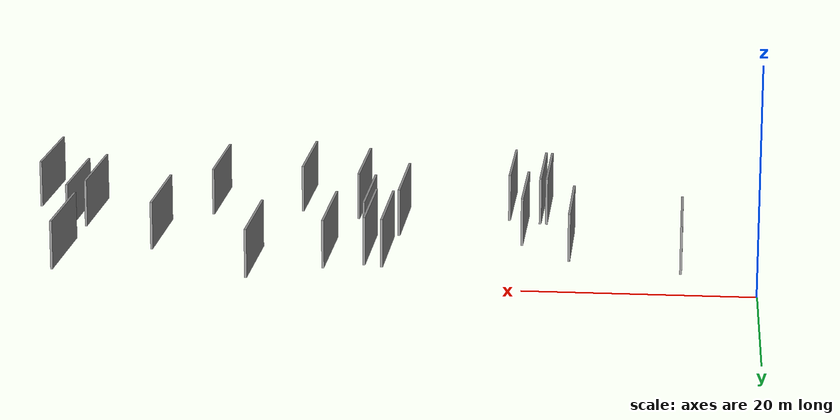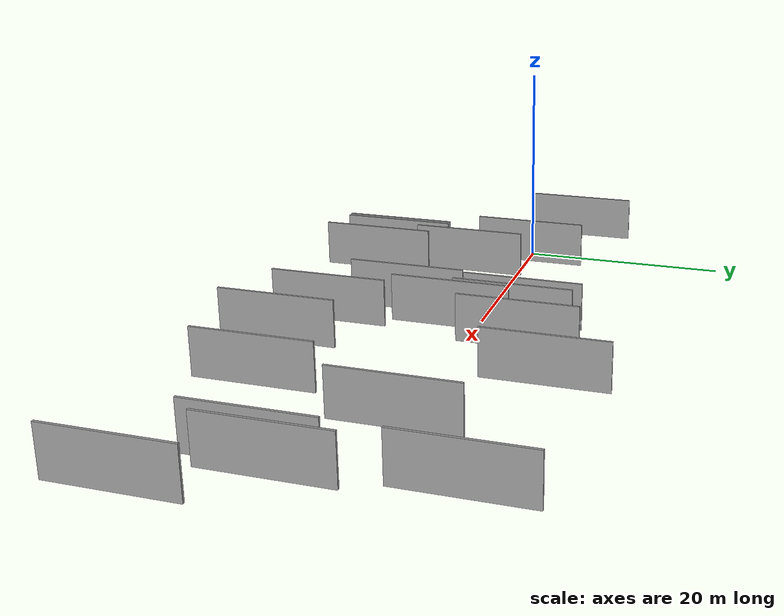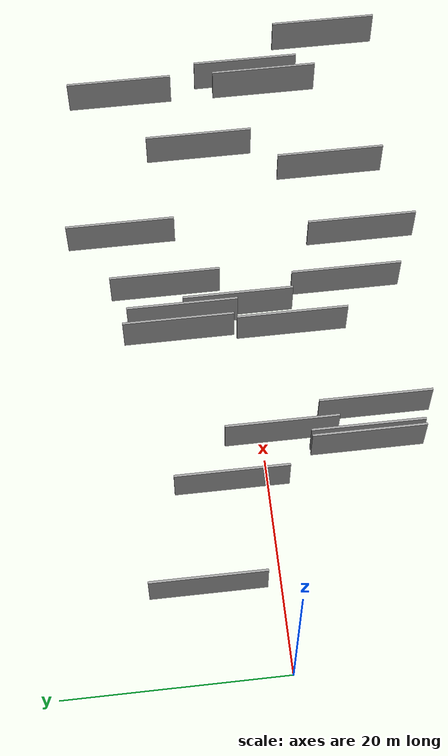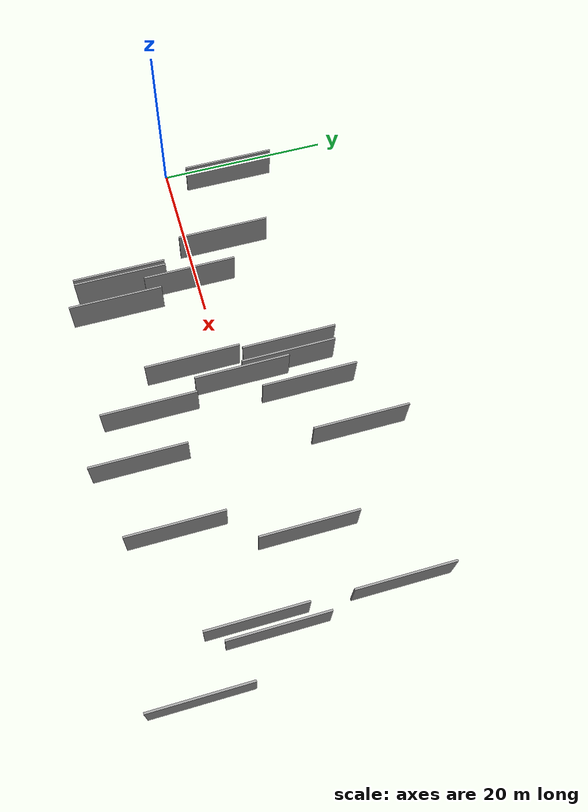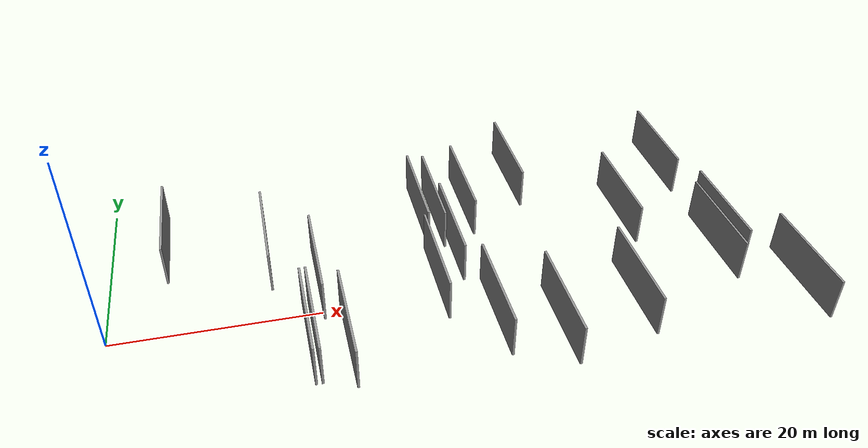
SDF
<sdf version="1.6">
 <world name="default">
  <scene>
   <sky><clouds><speed>12</speed></clouds></sky>
   <ambient>0.4 0.4 0.4 1</ambient>
   <background>0.7 0.7 0.7 1</background>
   <shadows>1</shadows>
  </scene>
  <gravity>0 0 -9.8066</gravity>
  <magnetic_field>6e-06 2.3e-05 -4.2e-05</magnetic_field>
  <physics default="0" name="default_physics" type="ode">
   <ode>
    <solver>
     <type>quick</type>
     <iters>10</iters>
     <sor>1.0</sor>
     <use_dynamic_moi_rescaling>0</use_dynamic_moi_rescaling>
    </solver>
    <constraints>
     <cfm>0</cfm>
     <erp>0.2</erp>
     <contact_max_correcting_vel>100</contact_max_correcting_vel>
     <contact_surface_layer>0.001</contact_surface_layer>
    </constraints>
   </ode>
   <max_step_size>0.004</max_step_size>
   <real_time_factor>1</real_time_factor>
   <real_time_update_rate>250</real_time_update_rate>
  </physics>
  <light name="sun" type="directional">
   <pose>0 0 10 0 0 0</pose>
   <diffuse>0.8 0.8 0.8 1</diffuse>
   <specular>0.2 0.2 0.2 1</specular>
   <attenuation>
    <range>1000</range>
    <constant>0.9</constant>
    <linear>0.01</linear>
    <quadratic>0.001</quadratic>
   </attenuation>
   <direction>-0.5 0.1 -0.9</direction>
  </light>
  <model name="grey_wall_1">
   <static>1</static>
   <pose>32.2207 6.1611 5.0 0.000000 0.000000 1.570796</pose>
   <link name="link">
    <pose>0 0 2.00 0 0 0</pose>
    <collision name="collision"><geometry><box><size>10.00 0.2 4.00</size></box></geometry></collision>
    <visual name="visual">
     <cast_shadows>0</cast_shadows>
     <geometry><box><size>10.00 0.2 4.00</size></box></geometry>
     <material>
      <script>
       <uri>model://grey_wall/materials/scripts</uri>
       <uri>model://grey_wall/materials/textures</uri>
       <name>vrc/grey_wall</name>
      </script>
     </material>
    </visual>
   </link>
  </model>
  <model name="grey_wall_2">
   <static>1</static>
   <pose>30.7261 6.6524 5.0 0.000000 0.000000 1.570796</pose>
   <link name="link">
    <pose>0 0 2.00 0 0 0</pose>
    <collision name="collision"><geometry><box><size>10.00 0.2 4.00</size></box></geometry></collision>
    <visual name="visual">
     <cast_shadows>0</cast_shadows>
     <geometry><box><size>10.00 0.2 4.00</size></box></geometry>
     <material>
      <script>
       <uri>model://grey_wall/materials/scripts</uri>
       <uri>model://grey_wall/materials/textures</uri>
       <name>vrc/grey_wall</name>
      </script>
     </material>
    </visual>
   </link>
  </model>
  <model name="grey_wall_3">
   <static>1</static>
   <pose>30.2914 -3.5749 5.0 0.000000 0.000000 1.570796</pose>
   <link name="link">
    <pose>0 0 2.00 0 0 0</pose>
    <collision name="collision"><geometry><box><size>10.00 0.2 4.00</size></box></geometry></collision>
    <visual name="visual">
     <cast_shadows>0</cast_shadows>
     <geometry><box><size>10.00 0.2 4.00</size></box></geometry>
     <material>
      <script>
       <uri>model://grey_wall/materials/scripts</uri>
       <uri>model://grey_wall/materials/textures</uri>
       <name>vrc/grey_wall</name>
      </script>
     </material>
    </visual>
   </link>
  </model>
  <model name="grey_wall_4">
   <static>1</static>
   <pose>62.5557 -10.7909 5.0 0.000000 0.000000 1.570796</pose>
   <link name="link">
    <pose>0 0 2.00 0 0 0</pose>
    <collision name="collision"><geometry><box><size>10.00 0.2 4.00</size></box></geometry></collision>
    <visual name="visual">
     <cast_shadows>0</cast_shadows>
     <geometry><box><size>10.00 0.2 4.00</size></box></geometry>
     <material>
      <script>
       <uri>model://grey_wall/materials/scripts</uri>
       <uri>model://grey_wall/materials/textures</uri>
       <name>vrc/grey_wall</name>
      </script>
     </material>
    </visual>
   </link>
  </model>
  <model name="grey_wall_5">
   <static>1</static>
   <pose>35.4638 7.4393 5.0 0.000000 0.000000 1.570796</pose>
   <link name="link">
    <pose>0 0 2.00 0 0 0</pose>
    <collision name="collision"><geometry><box><size>10.00 0.2 4.00</size></box></geometry></collision>
    <visual name="visual">
     <cast_shadows>0</cast_shadows>
     <geometry><box><size>10.00 0.2 4.00</size></box></geometry>
     <material>
      <script>
       <uri>model://grey_wall/materials/scripts</uri>
       <uri>model://grey_wall/materials/textures</uri>
       <name>vrc/grey_wall</name>
      </script>
     </material>
    </visual>
   </link>
  </model>
  <model name="grey_wall_6">
   <static>1</static>
   <pose>32.7932 1.0570 5.0 0.000000 0.000000 1.570796</pose>
   <link name="link">
    <pose>0 0 2.00 0 0 0</pose>
    <collision name="collision"><geometry><box><size>10.00 0.2 4.00</size></box></geometry></collision>
    <visual name="visual">
     <cast_shadows>0</cast_shadows>
     <geometry><box><size>10.00 0.2 4.00</size></box></geometry>
     <material>
      <script>
       <uri>model://grey_wall/materials/scripts</uri>
       <uri>model://grey_wall/materials/textures</uri>
       <name>vrc/grey_wall</name>
      </script>
     </material>
    </visual>
   </link>
  </model>
  <model name="grey_wall_7">
   <static>1</static>
   <pose>34.3178 -9.0145 5.0 0.000000 0.000000 1.570796</pose>
   <link name="link">
    <pose>0 0 2.00 0 0 0</pose>
    <collision name="collision"><geometry><box><size>10.00 0.2 4.00</size></box></geometry></collision>
    <visual name="visual">
     <cast_shadows>0</cast_shadows>
     <geometry><box><size>10.00 0.2 4.00</size></box></geometry>
     <material>
      <script>
       <uri>model://grey_wall/materials/scripts</uri>
       <uri>model://grey_wall/materials/textures</uri>
       <name>vrc/grey_wall</name>
      </script>
     </material>
    </visual>
   </link>
  </model>
  <model name="grey_wall_8">
   <static>1</static>
   <pose>19.7559 -1.3024 5.0 0.000000 0.000000 1.570796</pose>
   <link name="link">
    <pose>0 0 2.00 0 0 0</pose>
    <collision name="collision"><geometry><box><size>10.00 0.2 4.00</size></box></geometry></collision>
    <visual name="visual">
     <cast_shadows>0</cast_shadows>
     <geometry><box><size>10.00 0.2 4.00</size></box></geometry>
     <material>
      <script>
       <uri>model://grey_wall/materials/scripts</uri>
       <uri>model://grey_wall/materials/textures</uri>
       <name>vrc/grey_wall</name>
      </script>
     </material>
    </visual>
   </link>
  </model>
  <model name="grey_wall_9">
   <static>1</static>
   <pose>15.6284 3.5156 5.0 0.000000 0.000000 1.570796</pose>
   <link name="link">
    <pose>0 0 2.00 0 0 0</pose>
    <collision name="collision"><geometry><box><size>10.00 0.2 4.00</size></box></geometry></collision>
    <visual name="visual">
     <cast_shadows>0</cast_shadows>
     <geometry><box><size>10.00 0.2 4.00</size></box></geometry>
     <material>
      <script>
       <uri>model://grey_wall/materials/scripts</uri>
       <uri>model://grey_wall/materials/textures</uri>
       <name>vrc/grey_wall</name>
      </script>
     </material>
    </visual>
   </link>
  </model>
  <model name="grey_wall_10">
   <static>1</static>
   <pose>18.6064 -8.6807 5.0 0.000000 0.000000 1.570796</pose>
   <link name="link">
    <pose>0 0 2.00 0 0 0</pose>
    <collision name="collision"><geometry><box><size>10.00 0.2 4.00</size></box></geometry></collision>
    <visual name="visual">
     <cast_shadows>0</cast_shadows>
     <geometry><box><size>10.00 0.2 4.00</size></box></geometry>
     <material>
      <script>
       <uri>model://grey_wall/materials/scripts</uri>
       <uri>model://grey_wall/materials/textures</uri>
       <name>vrc/grey_wall</name>
      </script>
     </material>
    </visual>
   </link>
  </model>
  <model name="grey_wall_11">
   <static>1</static>
   <pose>6.4660 6.5355 5.0 0.000000 0.000000 1.570796</pose>
   <link name="link">
    <pose>0 0 2.00 0 0 0</pose>
    <collision name="collision"><geometry><box><size>10.00 0.2 4.00</size></box></geometry></collision>
    <visual name="visual">
     <cast_shadows>0</cast_shadows>
     <geometry><box><size>10.00 0.2 4.00</size></box></geometry>
     <material>
      <script>
       <uri>model://grey_wall/materials/scripts</uri>
       <uri>model://grey_wall/materials/textures</uri>
       <name>vrc/grey_wall</name>
      </script>
     </material>
    </visual>
   </link>
  </model>
  <model name="grey_wall_12">
   <static>1</static>
   <pose>50.3706 2.8285 5.0 0.000000 0.000000 1.570796</pose>
   <link name="link">
    <pose>0 0 2.00 0 0 0</pose>
    <collision name="collision"><geometry><box><size>10.00 0.2 4.00</size></box></geometry></collision>
    <visual name="visual">
     <cast_shadows>0</cast_shadows>
     <geometry><box><size>10.00 0.2 4.00</size></box></geometry>
     <material>
      <script>
       <uri>model://grey_wall/materials/scripts</uri>
       <uri>model://grey_wall/materials/textures</uri>
       <name>vrc/grey_wall</name>
      </script>
     </material>
    </visual>
   </link>
  </model>
  <model name="grey_wall_13">
   <static>1</static>
   <pose>39.4436 -11.2261 5.0 0.000000 0.000000 1.570796</pose>
   <link name="link">
    <pose>0 0 2.00 0 0 0</pose>
    <collision name="collision"><geometry><box><size>10.00 0.2 4.00</size></box></geometry></collision>
    <visual name="visual">
     <cast_shadows>0</cast_shadows>
     <geometry><box><size>10.00 0.2 4.00</size></box></geometry>
     <material>
      <script>
       <uri>model://grey_wall/materials/scripts</uri>
       <uri>model://grey_wall/materials/textures</uri>
       <name>vrc/grey_wall</name>
      </script>
     </material>
    </visual>
   </link>
  </model>
  <model name="grey_wall_14">
   <static>1</static>
   <pose>41.2879 11.0303 5.0 0.000000 0.000000 1.570796</pose>
   <link name="link">
    <pose>0 0 2.00 0 0 0</pose>
    <collision name="collision"><geometry><box><size>10.00 0.2 4.00</size></box></geometry></collision>
    <visual name="visual">
     <cast_shadows>0</cast_shadows>
     <geometry><box><size>10.00 0.2 4.00</size></box></geometry>
     <material>
      <script>
       <uri>model://grey_wall/materials/scripts</uri>
       <uri>model://grey_wall/materials/textures</uri>
       <name>vrc/grey_wall</name>
      </script>
     </material>
    </visual>
   </link>
  </model>
  <model name="grey_wall_15">
   <static>1</static>
   <pose>58.5923 -2.5908 5.0 0.000000 0.000000 1.570796</pose>
   <link name="link">
    <pose>0 0 2.00 0 0 0</pose>
    <collision name="collision"><geometry><box><size>10.00 0.2 4.00</size></box></geometry></collision>
    <visual name="visual">
     <cast_shadows>0</cast_shadows>
     <geometry><box><size>10.00 0.2 4.00</size></box></geometry>
     <material>
      <script>
       <uri>model://grey_wall/materials/scripts</uri>
       <uri>model://grey_wall/materials/textures</uri>
       <name>vrc/grey_wall</name>
      </script>
     </material>
    </visual>
   </link>
  </model>
  <model name="grey_wall_16">
   <static>1</static>
   <pose>57.3657 9.8621 5.0 0.000000 0.000000 1.570796</pose>
   <link name="link">
    <pose>0 0 2.00 0 0 0</pose>
    <collision name="collision"><geometry><box><size>10.00 0.2 4.00</size></box></geometry></collision>
    <visual name="visual">
     <cast_shadows>0</cast_shadows>
     <geometry><box><size>10.00 0.2 4.00</size></box></geometry>
     <material>
      <script>
       <uri>model://grey_wall/materials/scripts</uri>
       <uri>model://grey_wall/materials/textures</uri>
       <name>vrc/grey_wall</name>
      </script>
     </material>
    </visual>
   </link>
  </model>
  <model name="grey_wall_17">
   <static>1</static>
   <pose>57.3069 -4.2663 5.0 0.000000 0.000000 1.570796</pose>
   <link name="link">
    <pose>0 0 2.00 0 0 0</pose>
    <collision name="collision"><geometry><box><size>10.00 0.2 4.00</size></box></geometry></collision>
    <visual name="visual">
     <cast_shadows>0</cast_shadows>
     <geometry><box><size>10.00 0.2 4.00</size></box></geometry>
     <material>
      <script>
       <uri>model://grey_wall/materials/scripts</uri>
       <uri>model://grey_wall/materials/textures</uri>
       <name>vrc/grey_wall</name>
      </script>
     </material>
    </visual>
   </link>
  </model>
  <model name="grey_wall_18">
   <static>1</static>
   <pose>47.0503 -9.3611 5.0 0.000000 0.000000 1.570796</pose>
   <link name="link">
    <pose>0 0 2.00 0 0 0</pose>
    <collision name="collision"><geometry><box><size>10.00 0.2 4.00</size></box></geometry></collision>
    <visual name="visual">
     <cast_shadows>0</cast_shadows>
     <geometry><box><size>10.00 0.2 4.00</size></box></geometry>
     <material>
      <script>
       <uri>model://grey_wall/materials/scripts</uri>
       <uri>model://grey_wall/materials/textures</uri>
       <name>vrc/grey_wall</name>
      </script>
     </material>
    </visual>
   </link>
  </model>
  <model name="grey_wall_19">
   <static>1</static>
   <pose>21.3014 -9.7196 5.0 0.000000 0.000000 1.570796</pose>
   <link name="link">
    <pose>0 0 2.00 0 0 0</pose>
    <collision name="collision"><geometry><box><size>10.00 0.2 4.00</size></box></geometry></collision>
    <visual name="visual">
     <cast_shadows>0</cast_shadows>
     <geometry><box><size>10.00 0.2 4.00</size></box></geometry>
     <material>
      <script>
       <uri>model://grey_wall/materials/scripts</uri>
       <uri>model://grey_wall/materials/textures</uri>
       <name>vrc/grey_wall</name>
      </script>
     </material>
    </visual>
   </link>
  </model>
  <model name="grey_wall_20">
   <static>1</static>
   <pose>18.0748 -8.6903 5.0 0.000000 0.000000 1.570796</pose>
   <link name="link">
    <pose>0 0 2.00 0 0 0</pose>
    <collision name="collision"><geometry><box><size>10.00 0.2 4.00</size></box></geometry></collision>
    <visual name="visual">
     <cast_shadows>0</cast_shadows>
     <geometry><box><size>10.00 0.2 4.00</size></box></geometry>
     <material>
      <script>
       <uri>model://grey_wall/materials/scripts</uri>
       <uri>model://grey_wall/materials/textures</uri>
       <name>vrc/grey_wall</name>
      </script>
     </material>
    </visual>
   </link>
  </model>
 </world>
</sdf>
